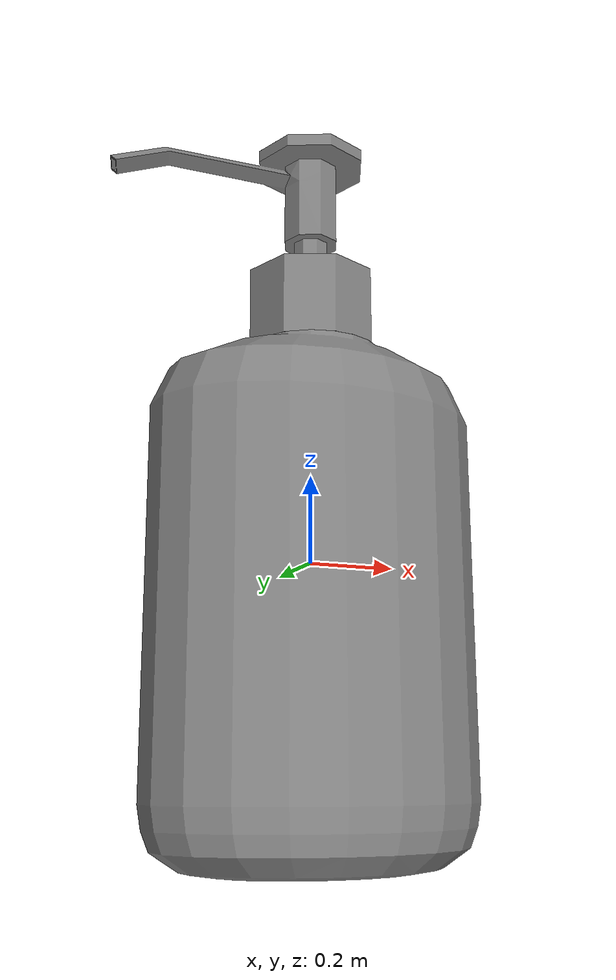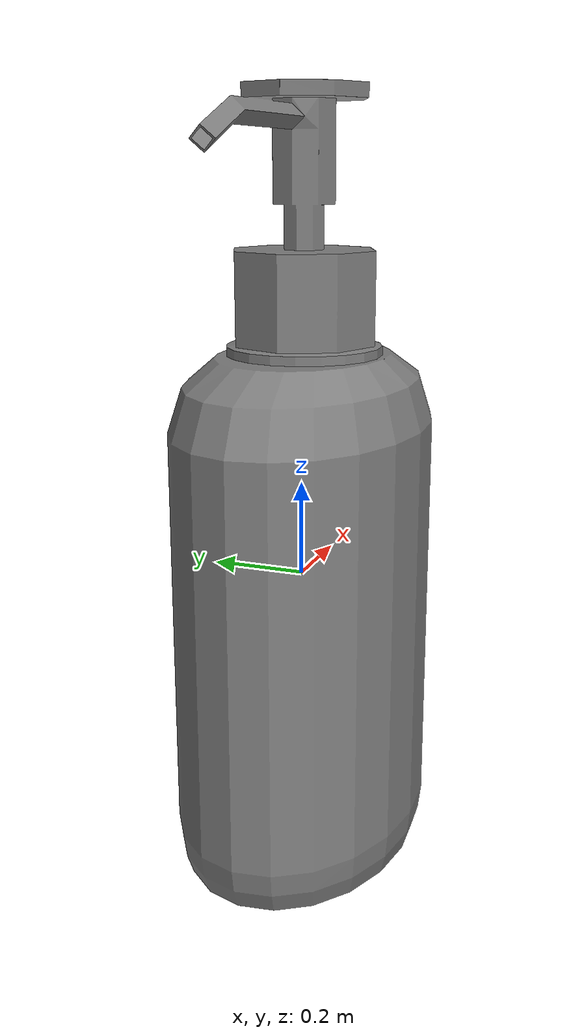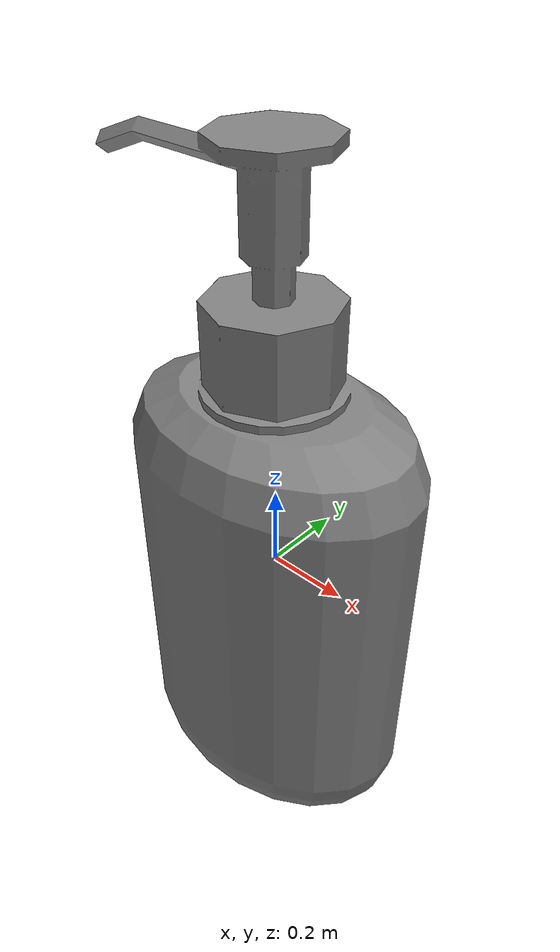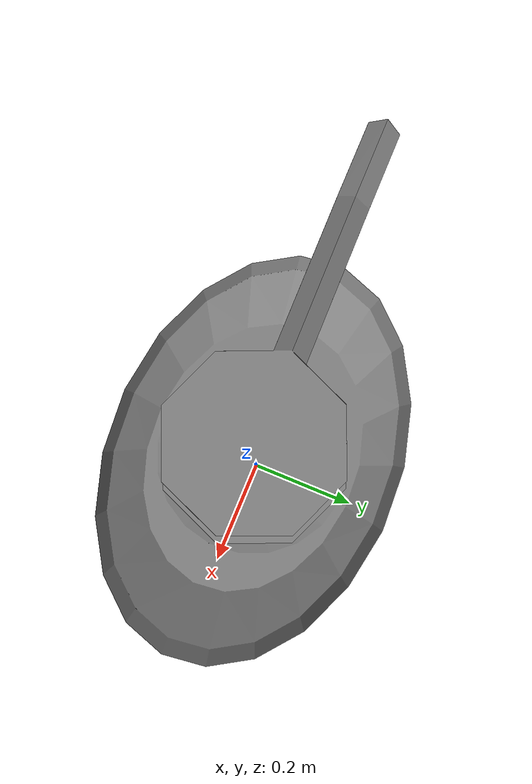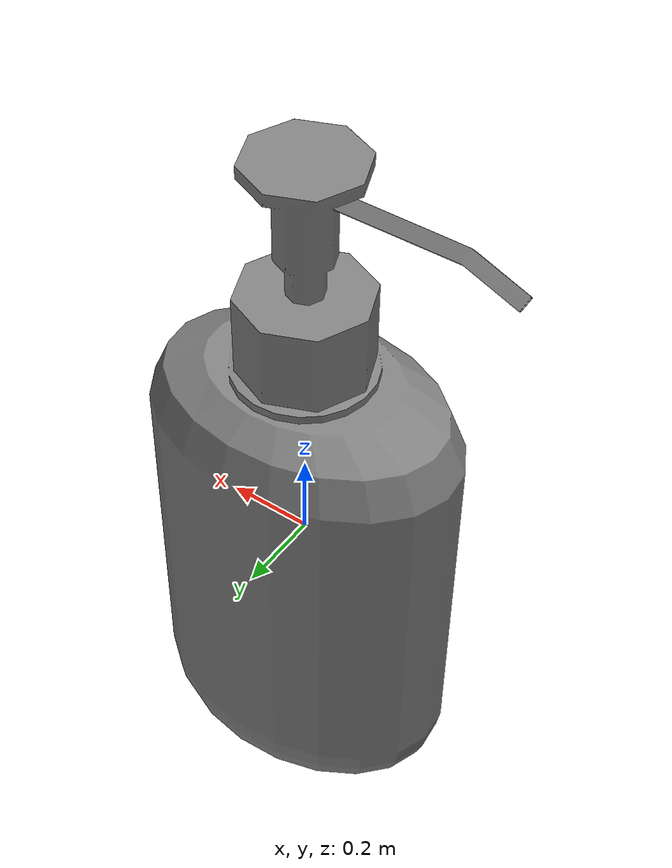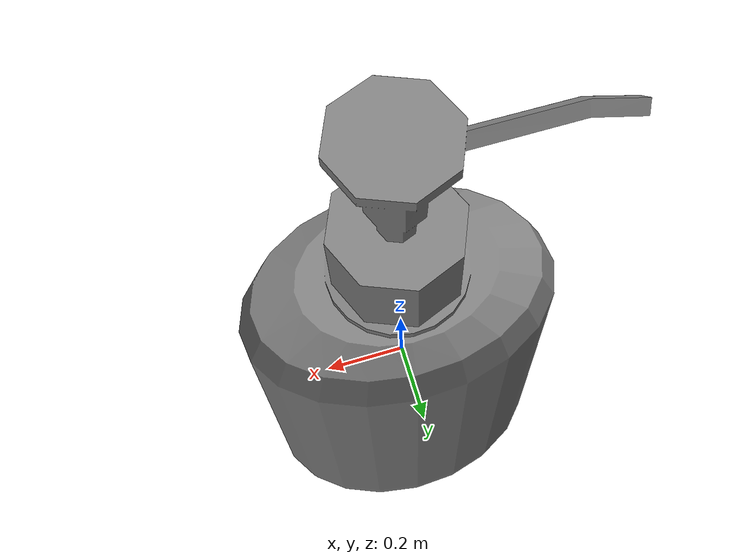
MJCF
<?xml version='1.0' encoding='UTF-8'?>
<mujoco model="partnet_daab8d5b-b371-404b-b11b-94564de1e0de">
  <compiler angle="radian"/>
  <asset>
    <mesh name="original_3" content_type="model/obj" file="textured_objs/original_3.obj"/>
    <mesh name="original_2" content_type="model/obj" file="textured_objs/original_2.obj"/>
    <mesh name="original_1" content_type="model/obj" file="textured_objs/original_1.obj"/>
  </asset>
  <worldbody>
    <body name="base">
      <body name="link_2" quat="0.5 0.5 -0.5 -0.5">
        <geom type="mesh" mesh="original_1"/>
        <body name="link_1_helper" pos="0.0046615 0 -0.002041">
          <inertial pos="0 0 0" mass="1e-06" diaginertia="1e-10 1e-10 1e-10"/>
          <joint name="joint_4" pos="0 0 0" axis="0 1 0" type="slide" range="0 0.1"/>
          <body name="link_1">
            <joint name="joint_1" pos="0 0 0" axis="0 -1 0"/>
            <geom pos="-0.0046615 0 0.002041" quat="1 0 0 0" type="mesh" mesh="original_2"/>
            <body name="link_0_helper" pos="3.9e-05 0 0.00230794">
              <inertial pos="0 0 0" mass="1e-06" diaginertia="1e-10 1e-10 1e-10"/>
              <joint name="joint_3" pos="0 0 0" axis="0 -1 0" type="slide" range="0 0.08"/>
              <body name="link_0">
                <joint name="joint_0" pos="0 0 0" axis="0 1 0"/>
                <geom pos="-0.0047005 0 -0.000266945" type="mesh" mesh="original_3"/>
              </body>
            </body>
          </body>
        </body>
      </body>
    </body>
  </worldbody>
</mujoco>
